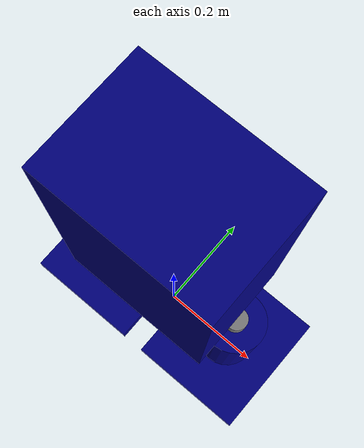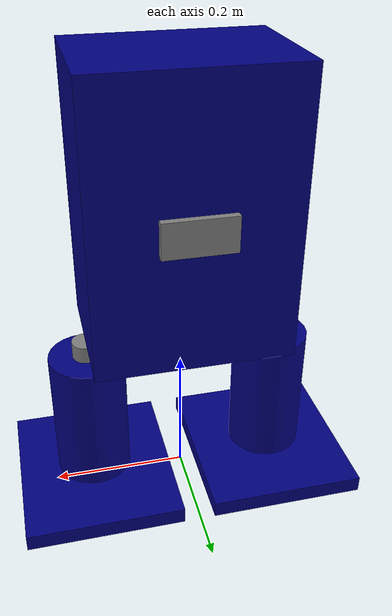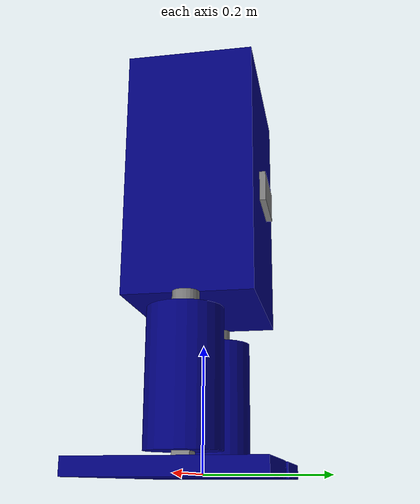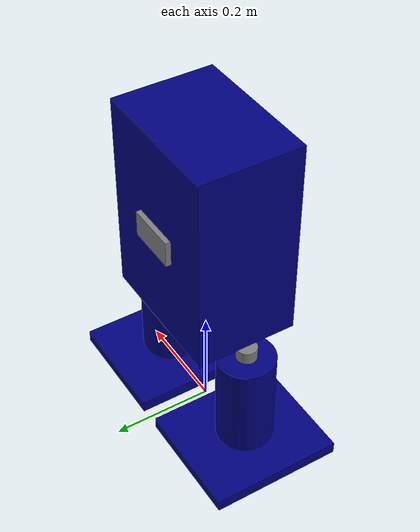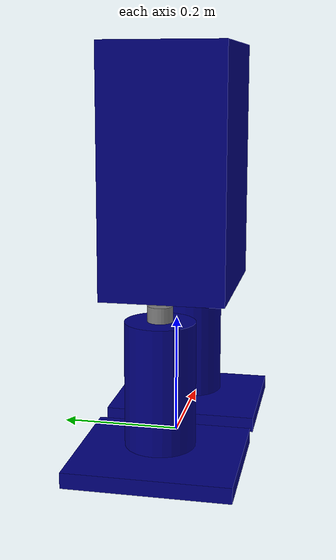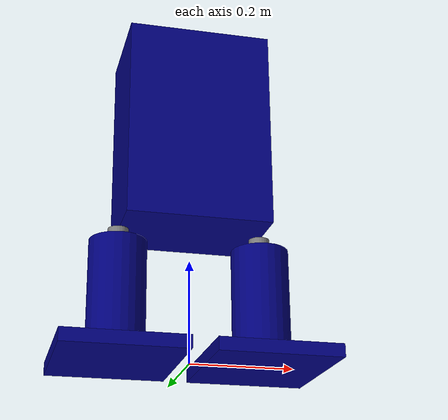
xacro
<?xml version="1.0"?>
<!-- Name my_robot is used in GZ YAML config file for topics naming -->
<robot name="my_robot" xmlns:xacro="http://www.ros.org/wiki/xacro">

    <xacro:include filename="common_properties.xacro" />
    <xacro:include filename="solid_structure.xacro" />
    <!-- Comment  below line if using non-gazebo-plugins version -->
    <xacro:include filename="solid_structure_gazebo.xacro" />
    <xacro:include filename="camera.xacro" />
</robot>

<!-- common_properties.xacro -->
<robot xmlns:xacro="http://www.ros.org/wiki/xacro">

    <material name="blue">
        <color rgba="0 0 0.5 1" />
    </material>

    <material name="grey">
        <color rgba="0.5 0.5 0.5 1" />
    </material>

    <xacro:macro name="box_inertia" params="mass lenght width height xyz rpy">
        <inertial>
            <origin xyz="${xyz}" rpy="${rpy}" />
            <mass value="${mass}" />
            <inertia ixx="${(mass/12) * (width*width + height*height)}" ixy="0" ixz="0"
                iyy="${(mass/12) * (lenght*lenght + height*height)}" iyz="0"
                izz="${(mass/12) * (lenght*lenght + width*width)}" />
        </inertial>
    </xacro:macro>

    <xacro:macro name="cylinder_inertia" params="mass radius height xyz rpy">
        <inertial>
            <origin xyz="${xyz}" rpy="${rpy}" />
            <mass value="${mass}" />
            <inertia ixx="${(mass/12) * (3*radius*radius + height*height)}" ixy="0" ixz="0"
                iyy="${(mass/12) * (3*radius*radius + height*height)}" iyz="0"
                izz="${(mass/2) * (radius*radius)}" />
        </inertial>
    </xacro:macro>

    <xacro:macro name="sphere_inertia" params="mass radius xyz rpy">
        <inertial>
            <origin xyz="${xyz}" rpy="${rpy}" />
            <mass value="${mass}" />
            <inertia ixx="${(2/5) * mass * radius * radius}" ixy="0" ixz="0"
                iyy="${(2/5) * mass * radius * radius}" iyz="0"
                izz="${(2/5) * mass * radius * radius}" />
        </inertial>
    </xacro:macro>

</robot>

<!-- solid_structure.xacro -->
<!-- Xacro allows to use macros and properties to generate URDF files -->

<robot xmlns:xacro="http://www.ros.org/wiki/xacro">

    <xacro:property name="torso_height" value="0.4" />
    <xacro:property name="torso_length" value="${0.7 * torso_height}" />
    <xacro:property name="torso_width" value="${0.5 * torso_height}" />
    <xacro:property name="pivot_radius" value="${0.05 * torso_height}" />
    <xacro:property name="pivot_length" value="${torso_width/8}" />
    <xacro:property name="leg_lenght" value="${torso_height / 2}" />
    <xacro:property name="leg_hip_offset" value="${-(leg_lenght / 2)}" />
    <xacro:property name="leg_ankle_offset" value="${-leg_lenght-pivot_radius*0.5}" />
    <xacro:property name="foot_height" value="${pivot_radius*1.25}" />
    <xacro:property name="foot_ankle_offset" value="${pivot_radius-(foot_height/2)}" />

    <!-- for wheels collisions use spheres instead of cylinders -->

    <link name="base_footprint" />

    <link name="torso_link">
        <visual>
            <geometry>
                <box size="${torso_length} ${torso_width} ${torso_height}" />
            </geometry>
            <origin xyz="0 0 ${torso_height / 2.0}" rpy="0 0 0" />
            <material name="blue" />
        </visual>
        <collision>
            <geometry>
                <box size="${torso_length} ${torso_width} ${torso_height}" />
            </geometry>
            <origin xyz="0 0 ${torso_height / 2.0}" rpy="0 0 0" />
        </collision>
        <xacro:box_inertia mass="2.0" height="${torso_height}" lenght="${torso_length}"
            width="${torso_width}" xyz="0 0 ${torso_height / 2.0}" rpy="0 0 0" />
    </link>

    <xacro:macro name="pivot_link" params="prefix xyz rpy">
        <link name="${prefix}_link">
            <visual>
                <geometry>
                    <cylinder radius="${pivot_radius}" length="${pivot_length}" />
                </geometry>
                <origin xyz="${xyz}" rpy="${rpy}" />
                <material name="grey" />
            </visual>
        </link>
    </xacro:macro>

    <xacro:pivot_link prefix="right_hip" xyz="0 0 -${pivot_length/2}" rpy="0 0 0" />
    <xacro:pivot_link prefix="left_hip" xyz="0 0 -${pivot_length/2}" rpy="0 0 0" />
    <xacro:pivot_link prefix="right_ankle" xyz="0 0 0" rpy="${pi/2.0} 0 0" />
    <xacro:pivot_link prefix="left_ankle" xyz="0 0 0" rpy="${pi/2.0} 0 0" />

    <link name="right_leg_link">
        <visual>
            <geometry>
                <cylinder radius="${torso_length*0.2}" length="${leg_lenght}" />
            </geometry>
            <origin xyz="0 0 ${leg_hip_offset}" rpy="0 0 0" />
            <material name="blue" />
        </visual>
        <collision>
            <geometry>
                <cylinder radius="${torso_length*0.2}" length="${leg_lenght}" />
            </geometry>
            <origin xyz="0 0 ${leg_hip_offset}" rpy="0 0 0" />
        </collision>
        <xacro:cylinder_inertia mass="1.0" radius="${torso_length*0.2}" height="${leg_lenght}"
            xyz="0 0 ${leg_hip_offset}" rpy="0 0 0" />
    </link>

    <link name="left_leg_link">
        <visual>
            <geometry>
                <cylinder radius="${torso_length*0.2}" length="${leg_lenght}" />
            </geometry>
            <origin xyz="0 0 ${leg_hip_offset}" rpy="0 0 0" />
            <material name="blue" />
        </visual>
        <collision>
            <geometry>
                <cylinder radius="${torso_length*0.2}" length="${leg_lenght}" />
            </geometry>
            <origin xyz="0 0 ${leg_hip_offset}" rpy="0 0 0" />
        </collision>
        <xacro:cylinder_inertia mass="1.0" radius="${torso_length*0.2}" height="${leg_lenght}"
            xyz="0 0 ${leg_hip_offset}" rpy="0 0 0" />
    </link>

    <link name="right_foot_link">
        <visual>
            <geometry>
                <box size="${torso_length*0.5/0.6} ${torso_width*1.3} ${foot_height}" />
            </geometry>
            <origin xyz="0 0 ${foot_ankle_offset}" rpy="0 0 0" />
            <material name="blue" />
        </visual>
        <collision>
            <geometry>
                <box size="${torso_length*0.5/0.6} ${torso_width*1.3} ${foot_height}" />
            </geometry>
            <origin xyz="0 0 ${foot_ankle_offset}" rpy="0 0 0" />
        </collision>
        <xacro:box_inertia mass="1.0" lenght="${torso_length*0.5/0.7}" width="${torso_width*1.1}"
            height="${foot_height}" xyz="0 0 ${foot_ankle_offset}" rpy="0 0 0" />
    </link>

    <link name="left_foot_link">
        <visual>
            <geometry>
                <box size="${torso_length*0.5/0.6} ${torso_width*1.3} ${foot_height}" />
            </geometry>
            <origin xyz="0 0 ${foot_ankle_offset}" rpy="0 0 0" />
            <material name="blue" />
        </visual>
        <collision>
            <geometry>
                <box size="${torso_length*0.5/0.6} ${torso_width*1.3} ${foot_height}" />
            </geometry>
            <origin xyz="0 0 ${foot_ankle_offset}" rpy="0 0 0" />
        </collision>
        <xacro:box_inertia mass="1.0" lenght="${torso_length*0.5/0.7}" width="${torso_width*1.1}"
            height="${foot_height}" xyz="0 0 ${foot_ankle_offset}" rpy="0 0 0" />
    </link>

    <joint name="base_joint" type="fixed">
        <parent link="base_footprint" />
        <child link="torso_link" />
        <origin xyz="0 0 ${leg_lenght+foot_height+1.5*pivot_radius}" rpy="0 0 0" />
    </joint>

    <joint name="right_hip_joint" type="revolute">
        <parent link="torso_link" />
        <child link="right_hip_link" />
        <origin xyz="${torso_length/2} 0 0" rpy="0 0 0" />
        <axis xyz="0 0 1" />
        <limit lower="${-pi/2.0}" upper="${pi/2.0}" velocity="100" effort="100" />
        <dynamics damping="0.5" friction="0.3" />
    </joint>

    <joint name="left_hip_joint" type="revolute">
        <parent link="torso_link" />
        <child link="left_hip_link" />
        <origin xyz="${-torso_length/2} 0 0" rpy="0 0 0" />
        <axis xyz="0 0 -1" />
        <limit lower="${-pi/2.0}" upper="${pi/2.0}" velocity="100" effort="100" />
        <dynamics damping="0.5" friction="0.3" />
    </joint>

    <joint name="right_leg_joint" type="fixed">
        <parent link="right_hip_link" />
        <child link="right_leg_link" />
        <origin xyz="0 0 -${pivot_length}" rpy="0 0 0" />
    </joint>

    <joint name="left_leg_joint" type="fixed">
        <parent link="left_hip_link" />
        <child link="left_leg_link" />
        <origin xyz="0 0 -${pivot_length}" rpy="0 0 0" />
    </joint>

    <joint name="right_ankle_joint" type="revolute">
        <parent link="right_leg_link" />
        <child link="right_ankle_link" />
        <origin xyz="0 0 ${leg_ankle_offset}" rpy="0 0 0" />
        <axis xyz="0 1 0" />
        <limit lower="-0.8" upper="0.8" velocity="100" effort="100" />
        <dynamics damping="0.5" friction="0.3" />
    </joint>

    <joint name="left_ankle_joint" type="revolute">
        <parent link="left_leg_link" />
        <child link="left_ankle_link" />
        <origin xyz="0 0 ${leg_ankle_offset}" rpy="0 0 0" />
        <axis xyz="0 -1 0" />
        <limit lower="-0.8" upper="0.8" velocity="100" effort="100" />
        <dynamics damping="0.5" friction="0.3" />
    </joint>

    <joint name="right_foot_joint" type="fixed">
        <parent link="right_ankle_link" />
        <child link="right_foot_link" />
        <origin xyz="0 0 -${pivot_radius}" rpy="0 0 0" />
    </joint>

    <joint name="left_foot_joint" type="fixed">
        <parent link="left_ankle_link" />
        <child link="left_foot_link" />
        <origin xyz="0 0 -${pivot_radius}" rpy="0 0 0" />
    </joint>

</robot>

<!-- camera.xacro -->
<robot xmlns:xacro="http://www.ros.org/wiki/xacro">

    <xacro:property name="camera_length" value="0.01" />
    <xacro:property name="camera_width" value="0.1" />
    <xacro:property name="camera_height" value="0.05" />

    <link name="camera_link">
        <visual>
            <geometry>
                <box size="${camera_length} ${camera_width} ${camera_height}" />
            </geometry>
            <material name="grey" />
            <!-- origin is 0 0 0 -->
        </visual>
        <collision>
            <geometry>
                <box size="${camera_length} ${camera_width} ${camera_height}" />
            </geometry>
        </collision>
        <xacro:box_inertia mass="0.1" lenght="${camera_length}" width="${camera_width}"
            height="${camera_height}"
            xyz="0 0 0" rpy="0 0 0" />
    </link>

    <joint name="camera_torso_joint" type="fixed">
        <parent link="torso_link" />
        <child link="camera_link" />
        <origin xyz="0 ${(torso_width + camera_length) / 2} ${torso_height / 2}" rpy="0 0 ${pi/2}" />
    </joint>

    <link name="camera_link_optical" />

    <joint name="camera_optical_joint" type="fixed">
        <origin xyz="0 0 0" rpy="${-pi/2} 0 ${-pi/2}" />
        <parent link="camera_link" />
        <child link="camera_link_optical" />
    </joint>

    <gazebo reference="camera_link">
        <sensor name="camera" type="camera">
            <camera>
                <horizontal_fov>1.3962634</horizontal_fov>
                <image>
                    <width>640</width>
                    <height>480</height>
                    <format>R8G8B8</format>
                </image>
                <clip>
                    <near>0.1</near>
                    <far>15</far>
                </clip>
                <noise>
                    <type>gaussian</type>
                    <mean>0.0</mean>
                    <stddev>0.007</stddev>
                </noise>
                <optical_frame_id>camera_link_optical</optical_frame_id>
                <camera_info_topic>camera/camera_info</camera_info_topic>
            </camera>
            <always_on>1</always_on>
            <update_rate>20</update_rate>
            <visualize>true</visualize>
            <topic>camera/image_raw</topic>
        </sensor>
    </gazebo>

</robot>
